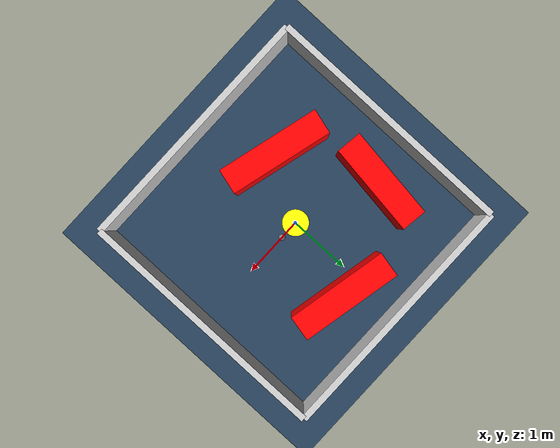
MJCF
<?xml version="1.0" ?>
<mujoco model="generated_environment">
  <option timestep="0.01" integrator="RK4" cone="elliptic"/>
  <default>
    <geom density="1"/>
  </default>
  <asset>
    <texture builtin="gradient" height="3072" rgb1="0.3 0.5 0.7" rgb2="0 0 0" type="skybox" width="512"/>
    <texture builtin="checker" height="300" mark="edge" markrgb="0.8 0.8 0.8" name="groundplane" rgb1="0.2 0.3 0.4" rgb2="0.1 0.2 0.3" type="2d" width="300"/>
    <material name="groundplane" reflectance="0.2" texrepeat="5 5" texture="groundplane" texuniform="true"/>
    <material name="robot" rgba="0.0 1.0 0.0 1"/>
  </asset>
  <worldbody>
    <light dir="0 0 -1" directional="true" pos="0 0 1.5"/>
    <geom condim="4" friction="1.0 0.005 0.001" material="groundplane" name="floor" size="0 0 0.05" type="plane"/>
    <body name="walls">
      <geom name="wall_1" condim="4" pos="-2.0 0.0 0.3" rgba="0.800000011920929 0.800000011920929 0.800000011920929 1.0" size="0.05 2.0 0.3" type="box"/>
      <geom name="wall_2" condim="4" pos="2.0 0.0 0.3" rgba="0.800000011920929 0.800000011920929 0.800000011920929 1.0" size="0.05 2.0 0.3" type="box"/>
      <geom name="wall_3" condim="4" pos="0.0 -2.0 0.3" rgba="0.800000011920929 0.800000011920929 0.800000011920929 1.0" size="2.0 0.05 0.3" type="box"/>
      <geom name="wall_4" condim="4" pos="0.0 2.0 0.3" rgba="0.800000011920929 0.800000011920929 0.800000011920929 1.0" size="2.0 0.05 0.3" type="box"/>
    </body>
    <body name="robot">
      <joint name="joint_x" type="slide" pos="0 0 0" axis="1 0 0"/>
      <joint name="joint_y" type="slide" pos="0 0 0" axis="0 1 0"/>
      <geom name="robot" type="sphere" pos="0.3 0.0 0.2" size="0.05" mass="5." friction="1.0 0.005 0.0001" condim="4" rgba="0.5 0.5 0.5 1.0"/>
      <site name="sensor_ball"/>
    </body>
    <body name="obstacle_movable_1">
      <geom name="obstacle_movable_1" condim="4" pos="0.0 0.0 0.2" euler="0 0 0.0" friction="1.0 0.005 0.001" rgba="1.0 1.0 0.0 1.0" size="0.2 0.2 0.0" type="cylinder" mass="0.1"/>
      <joint type="free"/>
    </body>
    <body name="obstacle_2_static">
      <geom name="obstacle_2_static" condim="4" pos="-0.5520966864081197 -0.9167835425880903 0.3" euler="0 0 165.0136729379449" friction="1.0 0.005 0.001" rgba="1 0 0 1" size="0.8167328261686295 0.2 0.3" type="box"/>
    </body>
    <body name="obstacle_3_static">
      <geom name="obstacle_3_static" condim="4" pos="-1.2773513103707252 0.5097202523824491 0.3" euler="0 0 82.45828248265526" friction="1.0 0.005 0.001" rgba="1 0 0 1" size="0.7370014903809101 0.2 0.3" type="box"/>
    </body>
    <body name="obstacle_4_static">
      <geom name="obstacle_4_static" condim="4" pos="0.3088578615884281 1.2355877258816792 0.3" euler="0 0 168.1636337030725" friction="1.0 0.005 0.001" rgba="1 0 0 1" size="0.7994453611939722 0.2 0.3" type="box"/>
    </body>
  </worldbody>
  <actuator>
    <motor name="actuator_x" joint="joint_x" gear="1" ctrlrange="-1 1"/>
    <motor name="actuator_y" joint="joint_y" gear="1" ctrlrange="-1 1"/>
  </actuator>
</mujoco>
